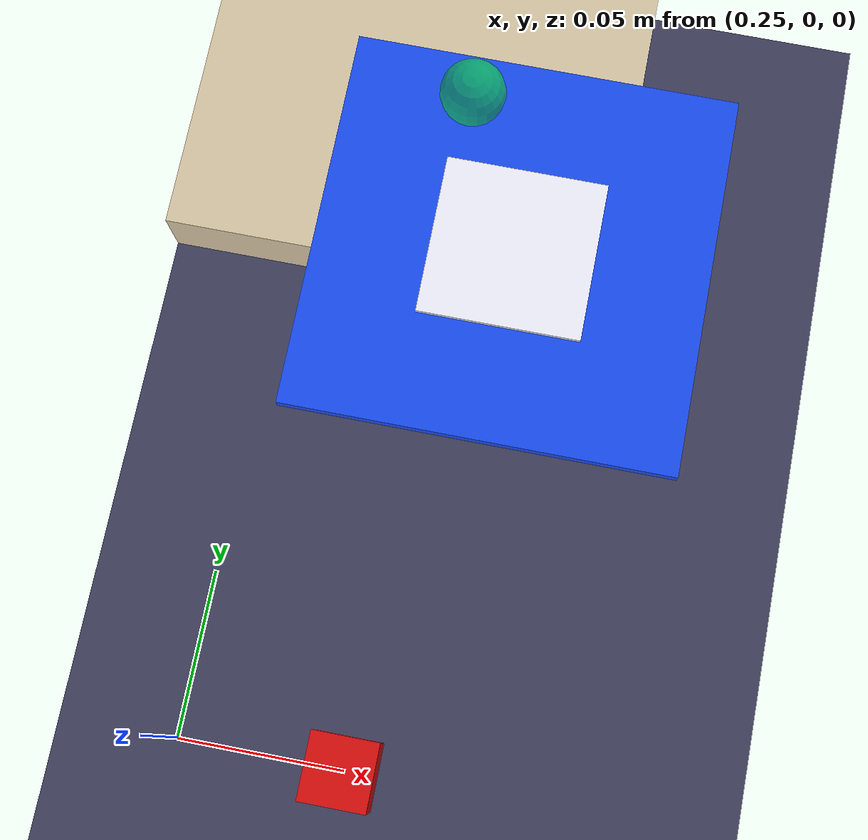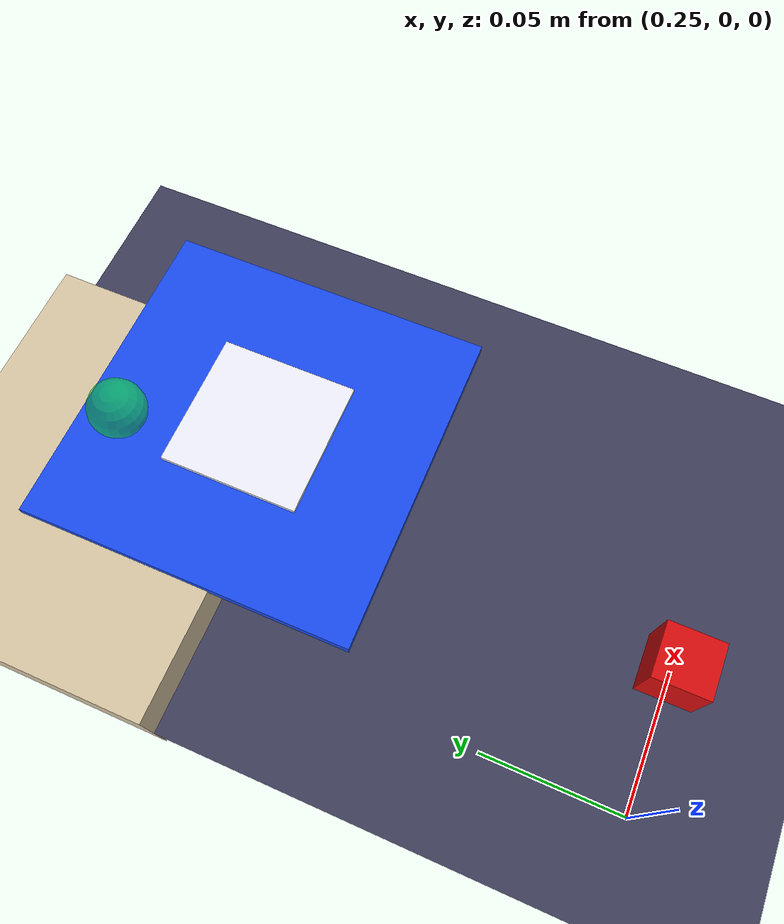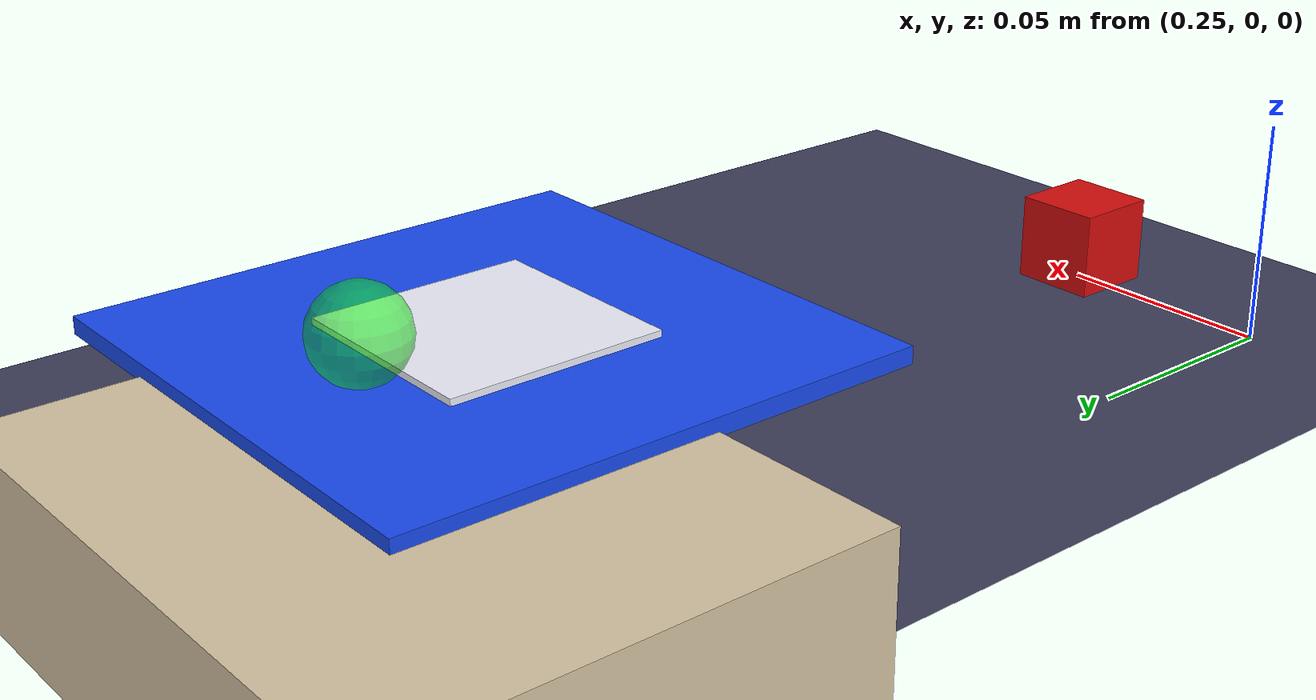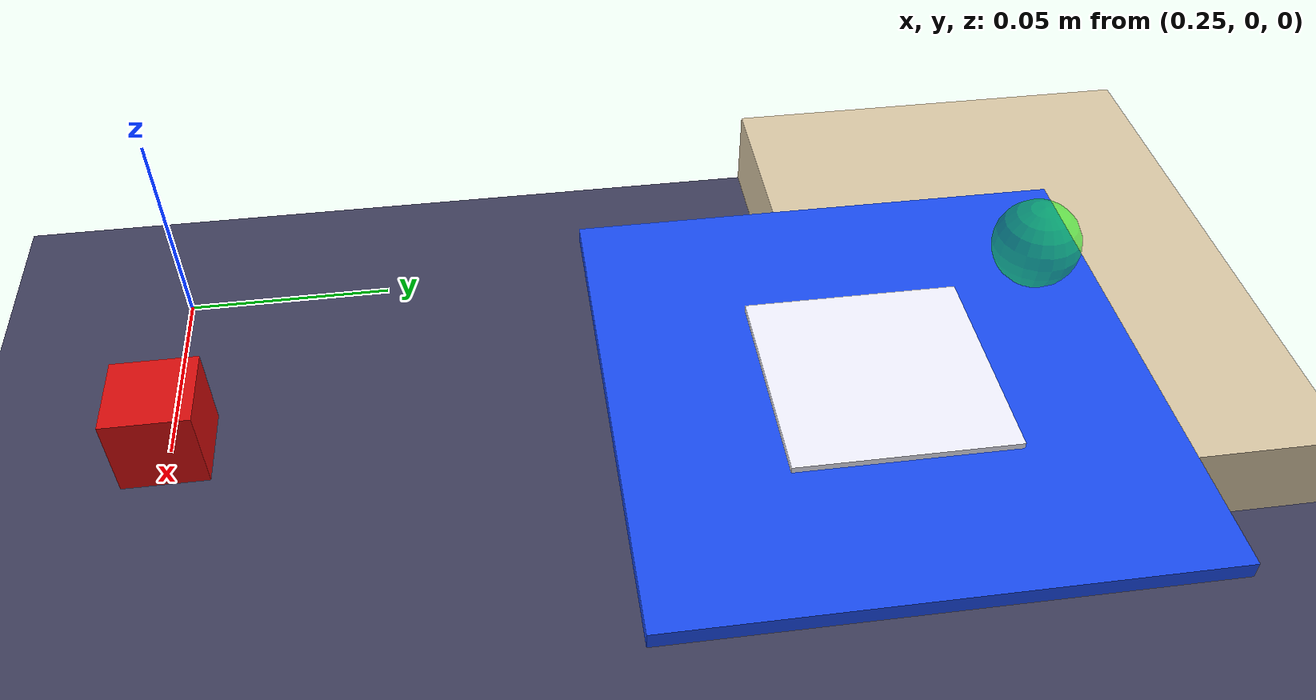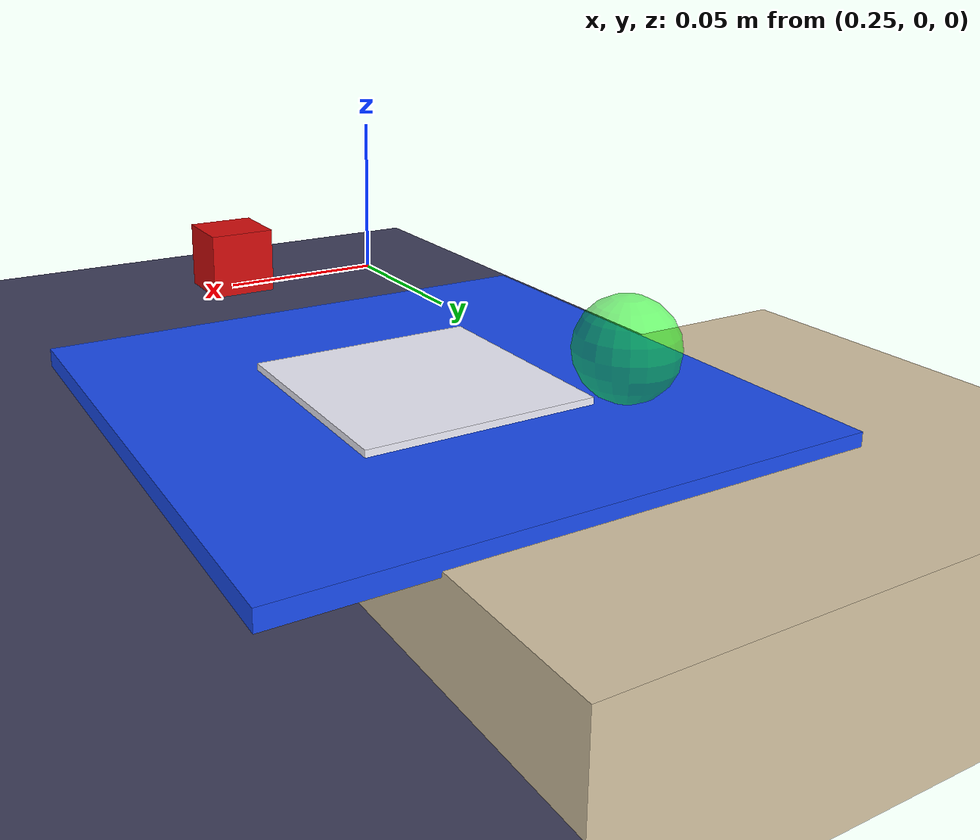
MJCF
<?xml version="1.0" ?>
<mujoco model="so101_pick_scene">
  <compiler angle="radian" meshdir="so101_official/assets" autolimits="true"/>

  <option timestep="0.002" iterations="100" ls_iterations="50"
          solver="Newton" integrator="Euler" cone="pyramidal"/>

  <visual>
    <global offheight="1024" offwidth="1024"/>
    <rgba haze="0.15 0.25 0.35 1"/>
    <quality shadowsize="4096"/>
    <headlight diffuse="0.6 0.6 0.6" ambient="0.3 0.3 0.3" specular="0 0 0"/>
  </visual>

  <default>
    <motor ctrlrange="-1 1" ctrllimited="true"/>
    <joint damping="1.5" armature="0.3" frictionloss="0.1"/>
  </default>

  <asset>
    <texture type="skybox" builtin="gradient" rgb1="0.4 0.5 0.7" rgb2="0.1 0.15 0.2"
             width="512" height="512"/>
    <texture name="texplane" type="2d" builtin="checker" rgb1="0.3 0.3 0.4"
             rgb2="0.4 0.4 0.5" width="512" height="512" mark="cross" markrgb="0.8 0.8 0.9"/>
    <material name="matplane" reflectance="0.4" texture="texplane" texrepeat="3 3"
              texuniform="true" rgba="0.7 0.7 0.8 1"/>
    <material name="mat_white" rgba="0.95 0.95 0.95 1" specular="0.4" shininess="0.6"/>
    <material name="mat_gray" rgba="0.55 0.55 0.6 1" specular="0.6" shininess="0.8"/>
    <material name="mat_dark" rgba="0.18 0.18 0.22 1" specular="0.3" shininess="0.4"/>
    <material name="mat_table" rgba="0.85 0.78 0.65 1" specular="0.2" shininess="0.4"/>
  </asset>

  <worldbody>
    <light directional="true" diffuse=".9 .9 .9" specular=".3 .3 .3" pos="0 0 5" dir="0 0 -1"/>
    <light directional="true" diffuse=".5 .5 .5" specular="0 0 0" pos="2 -2 3" dir="-0.5 0.5 -1"/>
    <light directional="true" diffuse=".3 .3 .3" specular="0 0 0" pos="-1 1 2" dir="0.3 -0.3 -1"/>

    <geom name="floor" pos="0 0 0" size="1 1 0.05" type="plane" material="matplane"
          condim="3" friction="1.0 0.005 0.0001"/>

    <geom name="table" pos="0.0 0.25 0.0" size="0.35 0.10 0.02" type="box"
          material="mat_table" condim="3"/>

    <body name="cube" pos="0.30 0.0 0.010">
      <freejoint name="cube_free"/>
      <geom name="cube_geom" type="box" size="0.010 0.010 0.010"
            rgba="0.85 0.05 0.05 1" mass="0.30" condim="6"
            friction="5.0 0.5 0.1"
            solref="0.01 1.0" solimp="0.95 0.99 0.001 0.5 2"/>
    </body>

    <!-- Target zone: blue disc + white inner ring. -->
    <body name="target_zone" pos="0.32 0.16 0.021">
      <geom name="target_zone_disc" type="box" size="0.06 0.06 0.002"
            rgba="0.1 0.3 0.95 1" contype="0" conaffinity="0"/>
      <geom name="target_zone_inner" type="box" size="0.025 0.025 0.003"
            rgba="0.95 0.95 1.0 1" pos="0 0 0.0005" contype="0" conaffinity="0"/>
    </body>

    <!-- Bowl at target to catch the dropped cube. -->
    <body name="bowl" pos="0.32 0.16 0.016">
      <geom name="bowl_floor" type="cylinder" size="0.028 0.001"
            rgba="0.30 0.30 0.36 1" contype="4" conaffinity="2" condim="3"/>
    </body>

    <!-- Cameras -->
    <camera name="over_shoulder" pos="-0.05 0.55 0.50" xyaxes="-0.74 -0.67 0 0.22 -0.24 0.95"
            mode="fixed" fovy="48"/>
    <camera name="pov" pos="0.40 -0.30 0.65" xyaxes="0.93 -0.37 0 0.21 0.51 0.84"
            mode="fixed" fovy="55"/>
    <camera name="front_top" pos="0.30 0.0 0.80" xyaxes="0 -1 0 0.94 0 0.34"
            mode="fixed" fovy="42"/>
    <camera name="portfolio" pos="-0.2 -1.0 0.85" xyaxes="0.83 -0.56 0 0.18 0.28 0.94"
            mode="fixed" fovy="36"/>

    <site name="workspace_origin" pos="0.30 0.20 0.04" size="0.01" rgba="0 1 0 0.5"/>

    <!-- Arm inclusion -->
    <include file="so101_official/so101_new_calib.xml"/>
  </worldbody>

  <actuator>
    <motor name="shoulder_pan_motor" joint="shoulder_pan" gear="60" ctrlrange="-1 1"/>
    <motor name="shoulder_lift_motor" joint="shoulder_lift" gear="60" ctrlrange="-1 1"/>
    <motor name="elbow_flex_motor" joint="elbow_flex" gear="40" ctrlrange="-1 1"/>
    <motor name="wrist_flex_motor" joint="wrist_flex" gear="20" ctrlrange="-1 1"/>
    <motor name="wrist_roll_motor" joint="wrist_roll" gear="20" ctrlrange="-1 1"/>
    <motor name="gripper_motor" joint="gripper" gear="20" ctrlrange="-1 1"/>
  </actuator>
</mujoco>

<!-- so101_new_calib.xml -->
<!-- Generated using onshape-to-robot -->
<!-- Onshape https://cad.onshape.com/documents/7715cc284bb430fe6dab4ffd/w/4fd0791b683777b02f8d975a/e/826c553ede3b7592eb9ca800 -->
<mujoco model="so101_new_calib">
  <compiler angle="radian" meshdir="assets" autolimits="true"/>
  <default>
    <default class="so101_new_calib">
      <joint damping="1" frictionloss="0.1" armature="0.005"/>
      <position kp="50"/>
      <default class="visual">
        <geom type="mesh" contype="1" conaffinity="1" group="2"/>
      </default>
      <default class="collision">
        <geom contype="1" conaffinity="1" group="3"/>
      </default>
    </default>
  </default>
  <!-- Additional joints_properties.xml -->
  <default>
    <default class="sts3215">
      <geom contype="0" conaffinity="0"/>
      <joint damping="0.60" frictionloss="0.052" armature="0.028"/>
      <position kp="998.22" kv="2.731" forcerange="-2.94 2.94"/>
    </default>
    <default class="backlash">
      <!-- +/- 0.5° of backlash -->
      <joint damping="0.01" frictionloss="0" armature="0.01" limited="true" range="-0.008726646259971648 0.008726646259971648"/>
    </default>
  </default>
  <worldbody>
    <!-- Link base -->
    <body name="base" pos="0 0 0" quat="1 0 0 0" childclass="so101_new_calib">
      <inertial pos="0.0137179 -5.19711e-05 0.0334843" mass="0.147" fullinertia="0.000114686 0.000136117 0.000130364 -4.59787e-07 4.97151e-06 9.75275e-08"/>
      <!-- Part base_motor_holder_so101_v1 -->
      <geom type="mesh" class="visual" pos="-0.00636471 -9.94414e-05 -0.0024" quat="0.5 0.5 0.5 0.5" mesh="base_motor_holder_so101_v1" material="base_motor_holder_so101_v1_material"/>
      <!-- Part base_so101_v2 -->
      <geom type="mesh" class="visual" pos="-0.00636471 -8.97657e-09 -0.0024" quat="0.5 0.5 0.5 0.5" mesh="base_so101_v2" material="base_so101_v2_material"/>
      <!-- Part sts3215_03a_v1 -->
      <geom type="mesh" class="visual" pos="0.0263353 -8.97657e-09 0.0437" quat="1 -2.85511e-16 -9.64433e-17 6.12908e-16" mesh="sts3215_03a_v1" material="sts3215_03a_v1_material"/>
      <!-- Part waveshare_mounting_plate_so101_v2 -->
      <geom type="mesh" class="visual" pos="-0.0309827 -0.000199441 0.0474" quat="0.5 0.5 0.5 0.5" mesh="waveshare_mounting_plate_so101_v2" material="waveshare_mounting_plate_so101_v2_material"/>
      <!-- Frame baseframe -->
      <site group="3" name="baseframe" pos="8.67362e-19 9.55596e-18 3.46945e-18" quat="1 -8.17396e-19 3.78392e-17 2.22045e-16"/>
      <!-- Link shoulder -->
      <body name="shoulder" pos="0.0388353 -8.97657e-09 0.0624" quat="3.56167e-16 1.22818e-15 -1 -4.14635e-16">
        <!-- Joint from base to shoulder -->
        <joint axis="0 0 1" name="shoulder_pan" type="hinge" range="-1.9198621771937616 1.9198621771937634" class="sts3215"/>
        <inertial pos="-0.0307604 -1.66727e-05 -0.0252713" mass="0.100006" fullinertia="8.3759e-05 8.10403e-05 2.39783e-05 7.55525e-08 -1.16342e-06 1.54663e-07"/>
        <!-- Part sts3215_03a_v1_2 -->
        <geom type="mesh" class="visual" pos="-0.0303992 0.000422241 -0.0417" quat="0.5 0.5 0.5 -0.5" mesh="sts3215_03a_v1" material="sts3215_03a_v1_material"/>
        <geom type="mesh" class="collision" pos="-0.0303992 0.000422241 -0.0417" quat="0.5 0.5 0.5 -0.5" mesh="sts3215_03a_v1" material="sts3215_03a_v1_material"/>
        <!-- Part motor_holder_so101_base_v1 -->
        <geom type="mesh" class="visual" pos="-0.0675992 -0.000177759 0.0158499" quat="0.5 0.5 -0.5 0.5" mesh="motor_holder_so101_base_v1" material="motor_holder_so101_base_v1_material"/>
        <geom type="mesh" class="collision" pos="-0.0675992 -0.000177759 0.0158499" quat="0.5 0.5 -0.5 0.5" mesh="motor_holder_so101_base_v1" material="motor_holder_so101_base_v1_material"/>
        <!-- Part rotation_pitch_so101_v1 -->
        <geom type="mesh" class="visual" pos="0.0122008 2.22413e-05 0.0464" quat="0.707107 -0.707107 -0 8.3163e-34" mesh="rotation_pitch_so101_v1" material="rotation_pitch_so101_v1_material"/>
        <geom type="mesh" class="collision" pos="0.0122008 2.22413e-05 0.0464" quat="0.707107 -0.707107 -0 8.3163e-34" mesh="rotation_pitch_so101_v1" material="rotation_pitch_so101_v1_material"/>
        <!-- Link upper_arm -->
        <body name="upper_arm" pos="-0.0303992 -0.0182778 -0.0542" quat="0.5 -0.5 -0.5 -0.5">
          <!-- Joint from shoulder to upper_arm -->
          <joint axis="0 0 1" name="shoulder_lift" type="hinge" range="-1.7453292519943224 1.7453292519943366" class="sts3215"/>
          <inertial pos="-0.0898471 -0.00838224 0.0184089" mass="0.103" fullinertia="4.08002e-05 0.000147318 0.000142487 -1.97819e-05 -4.03016e-08 8.97326e-09"/>
          <!-- Part sts3215_03a_v1_3 -->
          <geom type="mesh" class="visual" pos="-0.11257 -0.0155 0.0187" quat="4.56308e-16 -0.707107 0.707107 -1.37383e-16" mesh="sts3215_03a_v1" material="sts3215_03a_v1_material"/>
          <geom type="mesh" class="collision" pos="-0.11257 -0.0155 0.0187" quat="4.56308e-16 -0.707107 0.707107 -1.37383e-16" mesh="sts3215_03a_v1" material="sts3215_03a_v1_material"/>
          <!-- Part upper_arm_so101_v1 -->
          <geom type="mesh" class="visual" pos="-0.065085 0.012 0.0182" quat="0 1 0 0" mesh="upper_arm_so101_v1" material="upper_arm_so101_v1_material"/>
          <geom type="mesh" class="collision" pos="-0.065085 0.012 0.0182" quat="0 1 0 0" mesh="upper_arm_so101_v1" material="upper_arm_so101_v1_material"/>
          <!-- Link lower_arm -->
          <body name="lower_arm" pos="-0.11257 -0.028 1.73763e-16" quat="0.707107 -5.98613e-17 -2.58051e-17 0.707107">
            <!-- Joint from upper_arm to lower_arm -->
            <!-- Note: 5-degree calibration offset applied to joint range -->
            <joint axis="0 0 1" name="elbow_flex" type="hinge" range="-1.69 1.69" class="sts3215"/>
            <inertial pos="-0.0980701 0.00324376 0.0182831" mass="0.104" fullinertia="2.87438e-05 0.000159844 0.00014529 7.41152e-06 1.26409e-06 -4.90188e-08"/>
            <!-- Part under_arm_so101_v1 -->
            <geom type="mesh" class="visual" pos="-0.0648499 -0.032 0.0182" quat="0 1 0 0" mesh="under_arm_so101_v1" material="under_arm_so101_v1_material"/>
            <geom type="mesh" class="collision" pos="-0.0648499 -0.032 0.0182" quat="0 1 0 0" mesh="under_arm_so101_v1" material="under_arm_so101_v1_material"/>
            <!-- Part motor_holder_so101_wrist_v1 -->
            <geom type="mesh" class="visual" pos="-0.0648499 -0.032 0.018" quat="3.92687e-16 -1 -1.9186e-15 -6.38378e-16" mesh="motor_holder_so101_wrist_v1" material="motor_holder_so101_wrist_v1_material"/>
            <geom type="mesh" class="collision" pos="-0.0648499 -0.032 0.018" quat="3.92687e-16 -1 -1.9186e-15 -6.38378e-16" mesh="motor_holder_so101_wrist_v1" material="motor_holder_so101_wrist_v1_material"/>
            <!-- Part sts3215_03a_v1_4 -->
            <geom type="mesh" class="visual" pos="-0.1224 0.0052 0.0187" quat="7.21645e-16 1.56949e-15 1 -3.33067e-16" mesh="sts3215_03a_v1" material="sts3215_03a_v1_material"/>
            <geom type="mesh" class="collision" pos="-0.1224 0.0052 0.0187" quat="7.21645e-16 1.56949e-15 1 -3.33067e-16" mesh="sts3215_03a_v1" material="sts3215_03a_v1_material"/>
            <!-- Link wrist -->
            <body name="wrist" pos="-0.1349 0.0052 3.62355e-17" quat="0.707107 9.58722e-16 -7.51313e-16 -0.707107">
              <!-- Joint from lower_arm to wrist -->
              <joint axis="0 0 1" name="wrist_flex" type="hinge" range="-1.6580628494556928 1.6580627293335335" class="sts3215"/>
              <inertial pos="-0.000103312 -0.0386143 0.0281156" mass="0.079" fullinertia="3.68263e-05 2.5391e-05 2.1e-05 1.7893e-08 -5.28128e-08 3.6412e-06"/>
              <!-- Part sts3215_03a_no_horn_v1 -->
              <geom type="mesh" class="visual" pos="8.32667e-17 -0.0424 0.0306" quat="0.5 0.5 0.5 -0.5" mesh="sts3215_03a_no_horn_v1" material="sts3215_03a_no_horn_v1_material"/>
              <geom type="mesh" class="collision" pos="8.32667e-17 -0.0424 0.0306" quat="0.5 0.5 0.5 -0.5" mesh="sts3215_03a_no_horn_v1" material="sts3215_03a_no_horn_v1_material"/>
              <!-- Part wrist_roll_pitch_so101_v2 -->
              <geom type="mesh" class="visual" pos="0 -0.028 0.0181" quat="0.5 -0.5 -0.5 -0.5" mesh="wrist_roll_pitch_so101_v2" material="wrist_roll_pitch_so101_v2_material"/>
              <geom type="mesh" class="collision" pos="0 -0.028 0.0181" quat="0.5 -0.5 -0.5 -0.5" mesh="wrist_roll_pitch_so101_v2" material="wrist_roll_pitch_so101_v2_material"/>
              <!-- Link gripper -->
              <body name="gripper" pos="5.55112e-17 -0.0611 0.0181" quat="0.0172091 -0.0172091 0.706897 0.706897">
                <!-- Joint from wrist to gripper -->
                <joint axis="0 0 1" name="wrist_roll" type="hinge" range="-2.7438472969992493 2.841206309382605" class="sts3215"/>
                <inertial pos="0.000213627 0.000245138 -0.025187" mass="0.087" fullinertia="2.75087e-05 4.33657e-05 3.45059e-05 -3.35241e-07 -5.7352e-06 -5.17847e-08"/>
                <!-- Part sts3215_03a_v1_5 -->
                <geom type="mesh" class="visual" pos="0.0077 0.0001 -0.0234" quat="0.707107 -0.707107 1.66015e-15 6.45094e-15" mesh="sts3215_03a_v1" material="sts3215_03a_v1_material"/>
                <geom type="mesh" class="collision" pos="0.0077 0.0001 -0.0234" quat="0.707107 -0.707107 1.66015e-15 6.45094e-15" mesh="sts3215_03a_v1" material="sts3215_03a_v1_material"/>
                <!-- Part wrist_roll_follower_so101_v1 -->
                <geom type="mesh" class="visual" pos="8.32667e-17 -0.000218214 0.000949706" quat="0 1 0 0" mesh="wrist_roll_follower_so101_v1" material="wrist_roll_follower_so101_v1_material"/>
                <geom type="mesh" class="collision" pos="8.32667e-17 -0.000218214 0.000949706" quat="0 1 0 0" mesh="wrist_roll_follower_so101_v1" material="wrist_roll_follower_so101_v1_material"/>
                <!-- Frame gripperframe (TCP - tool center point, 10cm in front, centered between fingers) -->
                <site group="3" name="gripperframe" pos="0.0 0.0 -0.0981274" quat="0.707107 -0 0.707107 -2.37788e-17"/>
                <!-- Frame graspframe (midpoint between fingers, for RL reach reward) -->
                <site group="3" name="graspframe" pos="0.002338 0.000055 -0.037843" quat="0.707107 -0 0.707107 -2.37788e-17"/>
                <!-- Wrist camera v7: behind gripper, looking down at workspace -->
                <camera name="wrist_cam" pos="0.0 -0.18 0.10" euler="0.5 0 3.14159" fovy="60"/>
                <!-- Static fingertip (max mesh-local Z vertices) -->
                <site group="3" name="static_fingertip" pos="-0.012 0.0 -0.104" rgba="0.2 0.2 0.2 0" size="0.005"/>
                <!-- Static finger collision pad (box for stable contact) -->
                <geom name="static_finger_pad" type="box" size="0.00125 0.00125 0.00125" pos="-0.008875 0.0 -0.100" rgba="0.2 0.2 0.2 1" friction="1 0.05 0.001"/>
                <!-- Link moving_jaw_so101_v1 -->
                <body name="moving_jaw_so101_v1" pos="0.0202 0.0188 -0.0234" quat="0.707107 0.707107 -1.85362e-08 1.85362e-08">
                  <!-- Joint from gripper to moving_jaw_so101_v1 -->
                  <joint axis="0 0 1" name="gripper" type="hinge" range="-0.17453297762778586 1.7453291995659765" class="sts3215"/>
                  <inertial pos="-0.00157495 -0.0300244 0.0192755" mass="0.012" fullinertia="6.61427e-06 1.89032e-06 5.28738e-06 -3.19807e-07 -5.90717e-09 -1.09945e-07"/>
                  <!-- Part moving_jaw_so101_v1 -->
                  <geom type="mesh" class="visual" pos="-5.55112e-17 -5.55112e-17 0.0189" quat="1 -0 3.00524e-16 -2.00834e-17" mesh="moving_jaw_so101_v1" material="moving_jaw_so101_v1_material"/>
                  <geom type="mesh" class="collision" pos="-5.55112e-17 -5.55112e-17 0.0189" quat="1 -0 3.00524e-16 -2.00834e-17" mesh="moving_jaw_so101_v1" material="moving_jaw_so101_v1_material"/>
                  <!-- Moving fingertip (closest to static fingertip) -->
                  <site group="3" name="moving_fingertip" pos="-0.011 -0.076 0.019" rgba="0.2 0.2 0.2 0" size="0.005"/>
                  <!-- Moving finger collision pad (box for stable contact) -->
                  <!-- X shifted so +X face protrudes 0.2mm inward -->
                  <geom name="moving_finger_pad" type="box" size="0.00125 0.00125 0.00125" pos="-0.01136 -0.076 0.019" rgba="0.2 0.2 0.2 1" friction="1 0.05 0.001"/>
                </body>
              </body>
            </body>
          </body>
        </body>
      </body>
    </body>
  </worldbody>
  <asset>
    <mesh file="waveshare_mounting_plate_so101_v2.stl"/>
    <mesh file="sts3215_03a_v1.stl"/>
    <mesh file="motor_holder_so101_base_v1.stl"/>
    <mesh file="wrist_roll_follower_so101_v1.stl"/>
    <mesh file="moving_jaw_so101_v1.stl"/>
    <mesh file="base_motor_holder_so101_v1.stl"/>
    <mesh file="upper_arm_so101_v1.stl"/>
    <mesh file="wrist_roll_pitch_so101_v2.stl"/>
    <mesh file="under_arm_so101_v1.stl"/>
    <mesh file="rotation_pitch_so101_v1.stl"/>
    <mesh file="motor_holder_so101_wrist_v1.stl"/>
    <mesh file="sts3215_03a_no_horn_v1.stl"/>
    <mesh file="base_so101_v2.stl"/>
    <material name="base_motor_holder_so101_v1_material" rgba="1 0.82 0.12 1"/>
    <material name="base_so101_v2_material" rgba="1 0.82 0.12 1"/>
    <material name="sts3215_03a_v1_material" rgba="0.1 0.1 0.1 1"/>
    <material name="waveshare_mounting_plate_so101_v2_material" rgba="1 0.82 0.12 1"/>
    <material name="motor_holder_so101_base_v1_material" rgba="1 0.82 0.12 1"/>
    <material name="rotation_pitch_so101_v1_material" rgba="1 0.82 0.12 1"/>
    <material name="upper_arm_so101_v1_material" rgba="1 0.82 0.12 1"/>
    <material name="under_arm_so101_v1_material" rgba="1 0.82 0.12 1"/>
    <material name="motor_holder_so101_wrist_v1_material" rgba="1 0.82 0.12 1"/>
    <material name="sts3215_03a_no_horn_v1_material" rgba="0.1 0.1 0.1 1.0"/>
    <material name="wrist_roll_pitch_so101_v2_material" rgba="1 0.82 0.12 1"/>
    <material name="wrist_roll_follower_so101_v1_material" rgba="1 0.82 0.12 1"/>
    <material name="moving_jaw_so101_v1_material" rgba="1 0.82 0.12 1"/>
  </asset>
  <actuator>
    <position class="sts3215" name="shoulder_pan" joint="shoulder_pan" forcerange="-3.35 3.35" ctrlrange="-1.91986 1.91986"/>
    <position class="sts3215" name="shoulder_lift" joint="shoulder_lift" forcerange="-3.35 3.35" ctrlrange="-1.74533 1.74533"/>
    <position class="sts3215" name="elbow_flex" joint="elbow_flex" forcerange="-3.35 3.35" ctrlrange="-1.69 1.69"/>
    <position class="sts3215" name="wrist_flex" joint="wrist_flex" forcerange="-3.35 3.35" ctrlrange="-1.65806 1.65806"/>
    <position class="sts3215" name="wrist_roll" joint="wrist_roll" forcerange="-3.35 3.35" ctrlrange="-2.74385 2.84121"/>
    <position class="sts3215" name="gripper" joint="gripper" forcerange="-10 10" ctrlrange="-0.17453 1.74533"/>
  </actuator>
  <equality/>
  <contact>
    <!-- Exclude self-collision between adjacent arm bodies -->
    <exclude body1="base" body2="shoulder"/>
    <exclude body1="shoulder" body2="upper_arm"/>
    <exclude body1="upper_arm" body2="lower_arm"/>
    <exclude body1="lower_arm" body2="wrist"/>
    <exclude body1="wrist" body2="gripper"/>
    <exclude body1="gripper" body2="moving_jaw_so101_v1"/>
  </contact>
</mujoco>
